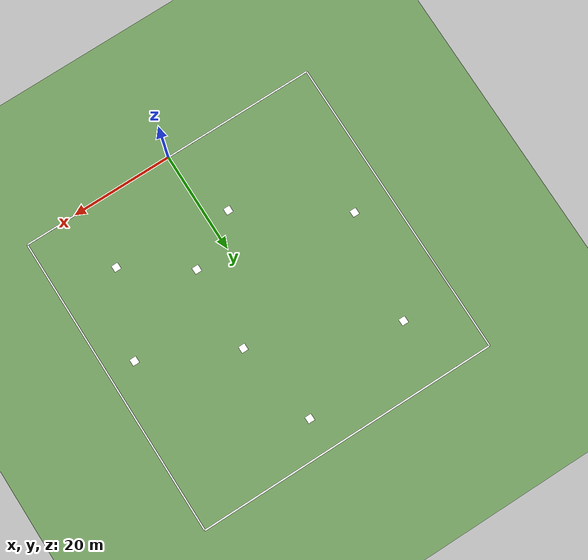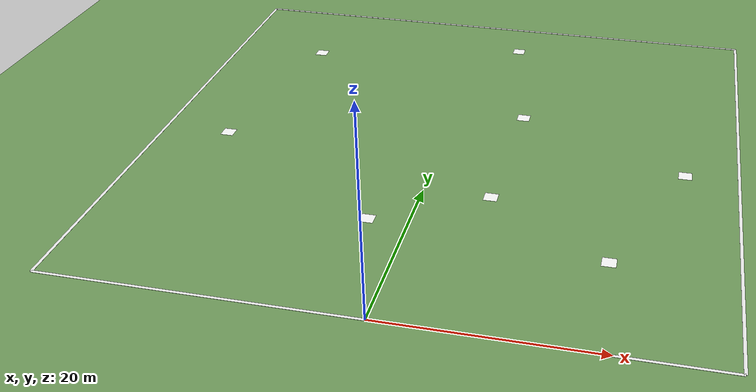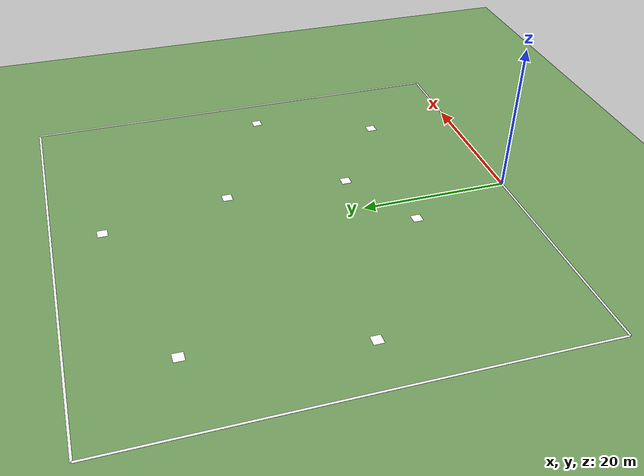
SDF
<?xml version="1.0" ?>
<sdf version="1.9">
  <world name="search_field">

    <physics name="1ms" type="ignored">
      <max_step_size>0.001</max_step_size>
      <real_time_factor>1.0</real_time_factor>
    </physics>

    <scene>
      <ambient>0.72 0.76 0.82 1</ambient>
      <background>0.48 0.68 0.88 1</background>
      <sky/>
    </scene>

    <spherical_coordinates>
      <surface_model>EARTH_WGS84</surface_model>
      <latitude_deg>47.397742</latitude_deg>
      <longitude_deg>8.545594</longitude_deg>
      <elevation>488.0</elevation>
      <heading_deg>0</heading_deg>
    </spherical_coordinates>

    <light name="sun" type="directional">
      <cast_shadows>true</cast_shadows>
      <pose>0 0 10 0 0 0</pose>
      <diffuse>1.0 1.0 1.0 1</diffuse>
      <specular>0.4 0.4 0.4 1</specular>
      <direction>-0.5 0.1 -0.9</direction>
    </light>

    <model name="ground_plane">
      <static>true</static>
      <link name="link">
        <collision name="collision">
          <geometry><plane><normal>0 0 1</normal><size>300 300</size></plane></geometry>
          <surface><friction><ode><mu>100</mu><mu2>50</mu2></ode></friction></surface>
        </collision>
        <visual name="visual">
          <cast_shadows>false</cast_shadows>
          <geometry><plane><normal>0 0 1</normal><size>300 300</size></plane></geometry>
          <material>
            <ambient>0.45 0.62 0.37 1</ambient>
            <diffuse>0.45 0.62 0.37 1</diffuse>
            <specular>0.05 0.05 0.05 1</specular>
          </material>
        </visual>
      </link>
    </model>

    <model name="search_area_outline">
      <static>true</static>
      <link name="link">
        <visual name="edge_0">
          <pose>0.0 0.0 0.005 0 0 0</pose>
          <geometry><box><size>60.0 0.3 0.01</size></box></geometry>
          <material><ambient>0.95 0.95 0.95 1</ambient><diffuse>0.95 0.95 0.95 1</diffuse></material>
        </visual>
        <visual name="edge_1">
          <pose>0.0 60.0 0.005 0 0 0</pose>
          <geometry><box><size>60.0 0.3 0.01</size></box></geometry>
          <material><ambient>0.95 0.95 0.95 1</ambient><diffuse>0.95 0.95 0.95 1</diffuse></material>
        </visual>
        <visual name="edge_2">
          <pose>-30.0 30.0 0.005 0 0 0</pose>
          <geometry><box><size>0.3 60.0 0.01</size></box></geometry>
          <material><ambient>0.95 0.95 0.95 1</ambient><diffuse>0.95 0.95 0.95 1</diffuse></material>
        </visual>
        <visual name="edge_3">
          <pose>30.0 30.0 0.005 0 0 0</pose>
          <geometry><box><size>0.3 60.0 0.01</size></box></geometry>
          <material><ambient>0.95 0.95 0.95 1</ambient><diffuse>0.95 0.95 0.95 1</diffuse></material>
        </visual>
      </link>
    </model>

    <include>
      <uri>model://aruco_marker_3</uri>
      <name>target_3</name>
      <pose>-22.98 26.82 0.01 0 0 0</pose>
    </include>
    <include>
      <uri>model://aruco_marker_4</uri>
      <name>target_4</name>
      <pose>-3.93 14.17 0.01 0 0 0</pose>
    </include>
    <include>
      <uri>model://aruco_marker_6</uri>
      <name>target_6</name>
      <pose>-19.56 48.04 0.01 0 0 0</pose>
    </include>
    <include>
      <uri>model://aruco_marker_9</uri>
      <name>target_9</name>
      <pose>6.63 20.27 0.01 0 0 0</pose>
    </include>
    <include>
      <uri>model://aruco_marker_20</uri>
      <name>target_20</name>
      <pose>4.01 53.59 0.01 0 0 0</pose>
    </include>
    <include>
      <uri>model://aruco_marker_25</uri>
      <name>target_25</name>
      <pose>24.77 28.25 0.01 0 0 0</pose>
    </include>
    <include>
      <uri>model://aruco_marker_34</uri>
      <name>target_34</name>
      <pose>18.64 12.14 0.01 0 0 0</pose>
    </include>
    <include>
      <uri>model://aruco_marker_41</uri>
      <name>target_41</name>
      <pose>7.22 36.75 0.01 0 0 0</pose>
    </include>

  </world>
</sdf>

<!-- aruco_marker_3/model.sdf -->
<!-- Generated by tools/gen_search_world.py: ArUco DICT_4X4_50 id 3, 1.0 m marker. -->
<sdf version="1.9">
  <model name="aruco_marker_3">
    <static>true</static>
    <link name="link">
      <visual name="visual">
        <cast_shadows>false</cast_shadows>
        <geometry><plane><normal>0 0 1</normal><size>1.333333 1.333333</size></plane></geometry>
        <material>
          <ambient>1 1 1 1</ambient>
          <diffuse>1 1 1 1</diffuse>
          <specular>0 0 0 1</specular>
          <pbr><metal>
            <albedo_map>model://aruco_marker_3/materials/textures/aruco_3.png</albedo_map>
            <roughness>1.0</roughness>
            <metalness>0.0</metalness>
          </metal></pbr>
        </material>
      </visual>
    </link>
  </model>
</sdf>

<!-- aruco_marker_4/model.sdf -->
<!-- Generated by tools/gen_search_world.py: ArUco DICT_4X4_50 id 4, 1.0 m marker. -->
<sdf version="1.9">
  <model name="aruco_marker_4">
    <static>true</static>
    <link name="link">
      <visual name="visual">
        <cast_shadows>false</cast_shadows>
        <geometry><plane><normal>0 0 1</normal><size>1.333333 1.333333</size></plane></geometry>
        <material>
          <ambient>1 1 1 1</ambient>
          <diffuse>1 1 1 1</diffuse>
          <specular>0 0 0 1</specular>
          <pbr><metal>
            <albedo_map>model://aruco_marker_4/materials/textures/aruco_4.png</albedo_map>
            <roughness>1.0</roughness>
            <metalness>0.0</metalness>
          </metal></pbr>
        </material>
      </visual>
    </link>
  </model>
</sdf>

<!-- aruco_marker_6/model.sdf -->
<!-- Generated by tools/gen_search_world.py: ArUco DICT_4X4_50 id 6, 1.0 m marker. -->
<sdf version="1.9">
  <model name="aruco_marker_6">
    <static>true</static>
    <link name="link">
      <visual name="visual">
        <cast_shadows>false</cast_shadows>
        <geometry><plane><normal>0 0 1</normal><size>1.333333 1.333333</size></plane></geometry>
        <material>
          <ambient>1 1 1 1</ambient>
          <diffuse>1 1 1 1</diffuse>
          <specular>0 0 0 1</specular>
          <pbr><metal>
            <albedo_map>model://aruco_marker_6/materials/textures/aruco_6.png</albedo_map>
            <roughness>1.0</roughness>
            <metalness>0.0</metalness>
          </metal></pbr>
        </material>
      </visual>
    </link>
  </model>
</sdf>

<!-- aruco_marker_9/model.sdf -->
<!-- Generated by tools/gen_search_world.py: ArUco DICT_4X4_50 id 9, 1.0 m marker. -->
<sdf version="1.9">
  <model name="aruco_marker_9">
    <static>true</static>
    <link name="link">
      <visual name="visual">
        <cast_shadows>false</cast_shadows>
        <geometry><plane><normal>0 0 1</normal><size>1.333333 1.333333</size></plane></geometry>
        <material>
          <ambient>1 1 1 1</ambient>
          <diffuse>1 1 1 1</diffuse>
          <specular>0 0 0 1</specular>
          <pbr><metal>
            <albedo_map>model://aruco_marker_9/materials/textures/aruco_9.png</albedo_map>
            <roughness>1.0</roughness>
            <metalness>0.0</metalness>
          </metal></pbr>
        </material>
      </visual>
    </link>
  </model>
</sdf>

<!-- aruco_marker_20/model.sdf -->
<!-- Generated by tools/gen_search_world.py: ArUco DICT_4X4_50 id 20, 1.0 m marker. -->
<sdf version="1.9">
  <model name="aruco_marker_20">
    <static>true</static>
    <link name="link">
      <visual name="visual">
        <cast_shadows>false</cast_shadows>
        <geometry><plane><normal>0 0 1</normal><size>1.333333 1.333333</size></plane></geometry>
        <material>
          <ambient>1 1 1 1</ambient>
          <diffuse>1 1 1 1</diffuse>
          <specular>0 0 0 1</specular>
          <pbr><metal>
            <albedo_map>model://aruco_marker_20/materials/textures/aruco_20.png</albedo_map>
            <roughness>1.0</roughness>
            <metalness>0.0</metalness>
          </metal></pbr>
        </material>
      </visual>
    </link>
  </model>
</sdf>

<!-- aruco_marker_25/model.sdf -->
<!-- Generated by tools/gen_search_world.py: ArUco DICT_4X4_50 id 25, 1.0 m marker. -->
<sdf version="1.9">
  <model name="aruco_marker_25">
    <static>true</static>
    <link name="link">
      <visual name="visual">
        <cast_shadows>false</cast_shadows>
        <geometry><plane><normal>0 0 1</normal><size>1.333333 1.333333</size></plane></geometry>
        <material>
          <ambient>1 1 1 1</ambient>
          <diffuse>1 1 1 1</diffuse>
          <specular>0 0 0 1</specular>
          <pbr><metal>
            <albedo_map>model://aruco_marker_25/materials/textures/aruco_25.png</albedo_map>
            <roughness>1.0</roughness>
            <metalness>0.0</metalness>
          </metal></pbr>
        </material>
      </visual>
    </link>
  </model>
</sdf>

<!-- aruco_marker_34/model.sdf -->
<!-- Generated by tools/gen_search_world.py: ArUco DICT_4X4_50 id 34, 1.0 m marker. -->
<sdf version="1.9">
  <model name="aruco_marker_34">
    <static>true</static>
    <link name="link">
      <visual name="visual">
        <cast_shadows>false</cast_shadows>
        <geometry><plane><normal>0 0 1</normal><size>1.333333 1.333333</size></plane></geometry>
        <material>
          <ambient>1 1 1 1</ambient>
          <diffuse>1 1 1 1</diffuse>
          <specular>0 0 0 1</specular>
          <pbr><metal>
            <albedo_map>model://aruco_marker_34/materials/textures/aruco_34.png</albedo_map>
            <roughness>1.0</roughness>
            <metalness>0.0</metalness>
          </metal></pbr>
        </material>
      </visual>
    </link>
  </model>
</sdf>

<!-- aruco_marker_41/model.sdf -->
<!-- Generated by tools/gen_search_world.py: ArUco DICT_4X4_50 id 41, 1.0 m marker. -->
<sdf version="1.9">
  <model name="aruco_marker_41">
    <static>true</static>
    <link name="link">
      <visual name="visual">
        <cast_shadows>false</cast_shadows>
        <geometry><plane><normal>0 0 1</normal><size>1.333333 1.333333</size></plane></geometry>
        <material>
          <ambient>1 1 1 1</ambient>
          <diffuse>1 1 1 1</diffuse>
          <specular>0 0 0 1</specular>
          <pbr><metal>
            <albedo_map>model://aruco_marker_41/materials/textures/aruco_41.png</albedo_map>
            <roughness>1.0</roughness>
            <metalness>0.0</metalness>
          </metal></pbr>
        </material>
      </visual>
    </link>
  </model>
</sdf>
